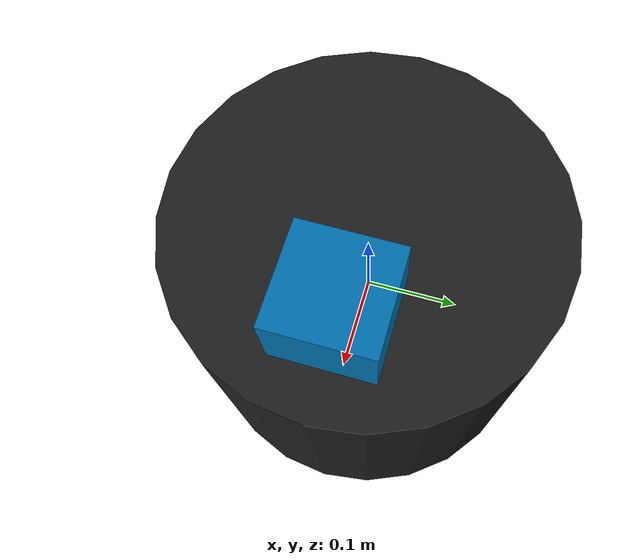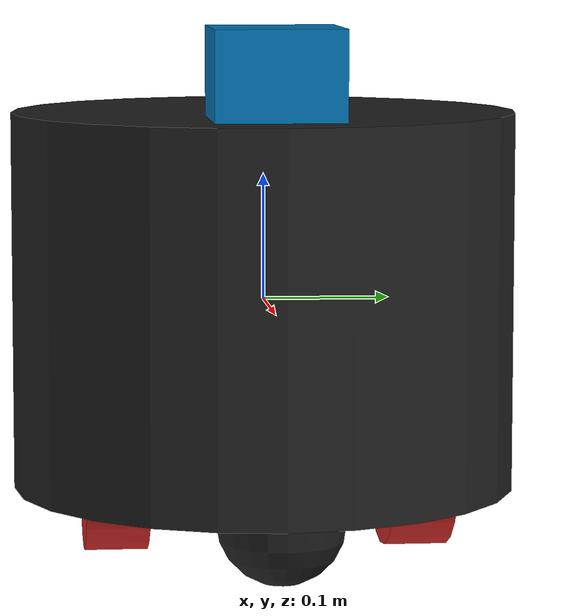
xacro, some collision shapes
<?xml version='1.0'?>
<robot name="my_robot" xmlns:xacro="http://www.ros.org/wiki/xacro">

  <xacro:include filename="$(find my_robot)/urdf/my_robot.gazebo" />
  <link name="robot_footprint"></link>

  <gazebo reference="left_wheel">
      <material>Gazebo/Red</material>
  </gazebo>

  <gazebo reference="right_wheel">
      <material>Gazebo/Red</material>
  </gazebo>

  <gazebo reference="chassis">
      <material>Gazebo/Black</material>
  </gazebo>

    <link name='chassis'>
      <pose>0 0 0.1 0 0 0</pose>

      <inertial>
        <mass value="15.0"/>
        <origin xyz="0.0 0 0" rpy=" 0 0 0"/>
        <inertia
            ixx="0.1" ixy="0" ixz="0"
            iyy="0.1" iyz="0"
            izz="0.1"
        />
      </inertial>

      <collision name='collision'>
        <origin xyz="0 0 0" rpy=" 0 0 0"/>
        <geometry>
  		<cylinder radius="0.2" length="0.3"/>
        </geometry>
      </collision>

      <visual name='chassis_visual'>
  	  <origin xyz="0 0 0" rpy=" 0 0 0"/>
        <geometry>
  		<cylinder radius="0.2" length="0.3"/>
        </geometry>
      </visual>

      <collision name='back_caster_collision'>
        <origin xyz="-0.15 0 -0.15" rpy=" 0 0 0"/>
        <geometry>
          <sphere radius="0.0499"/>
        </geometry>
      </collision>

      <visual name='back_caster_visual'>
        <origin xyz="-0.15 0 -0.15" rpy=" 0 0 0"/>
        <geometry>
          <sphere radius="0.05"/>
        </geometry>
      </visual>

      <collision name='front_caster_collision'>
        <origin xyz="0.15 0 -0.15" rpy=" 0 0 0"/>
        <geometry>
          <sphere radius="0.0499"/>
        </geometry>
      </collision>

      <visual name='front_caster_visual'>
        <origin xyz="0.15 0 -0.15" rpy=" 0 0 0"/>
        <geometry>
          <sphere radius="0.05"/>
        </geometry>
      </visual>

    </link>

  <link name='left_wheel'>
    <inertial>
      <mass value="5.0"/>
      <origin xyz="0.0 0 0" rpy=" 0 0 0"/>
      <inertia
        ixx="0.1" ixy="0" ixz="0"
        iyy="0.1" iyz="0"
        izz="0.1"
      />
    </inertial>

    <visual name='left_wheel_visual'>
      <origin xyz="0 0 0" rpy=" 0 1.5707 1.5707"/>
      <geometry>
        <cylinder radius="0.1" length="0.05"/>
      </geometry>
    </visual>

    <collision name='left_wheel_collision'>
      <origin xyz="0 0 0" rpy=" 0 1.5707 1.5707"/>
      <geometry>
        <cylinder radius="0.1" length="0.05"/>
      </geometry>
    </collision>
  </link>

  <link name='right_wheel'>
    <inertial>
      <mass value="5.0"/>
      <origin xyz="0.0 0 0" rpy=" 0 0 0"/>
      <inertia
          ixx="0.1" ixy="0" ixz="0"
          iyy="0.1" iyz="0"
          izz="0.1"
      />
    </inertial>

    <visual name='right_wheel_visual'>
      <origin xyz="0 0 0" rpy=" 0 1.5707 1.5707"/>
      <geometry>
        <cylinder radius="0.1" length="0.05"/>
      </geometry>
    </visual>

    <collision name='right_wheel_collision'>
      <origin xyz="0 0 0" rpy=" 0 1.5707 1.5707"/>
      <geometry>
        <cylinder radius="0.1" length="0.05"/>
      </geometry>
    </collision>
  </link>

  <link name='hokuyo'>
    <inertial>
      <mass value="1e-5"/>
      <origin xyz="0 0 0" rpy=" 0 0 0"/>
      <inertia
    ixx="1e-6" ixy="0" ixz="0"
    iyy="1e-6" iyz="0"
    izz="1e-6"
      />
    </inertial>

    <visual name='hokuyo_visual'>
      <origin xyz="0 0 0" rpy=" 0 0 0"/>
      <geometry>
        <mesh filename="package://my_robot/meshes/hokuyo.dae"/>
      </geometry>
    </visual>

    <collision name='hokuyo_collision'>
      <origin xyz="0 0 0" rpy=" 0 0 0"/>
      <geometry>
    <box size=".1 .1 .1"/>
      </geometry>
    </collision>
  </link>

  <link name='camera_link'>
  	<inertial>
  	  <mass value="0.1"/>
  	  <origin xyz="0.05 0.05 0.05" rpy=" 0 0 0"/>
  	  <inertia
  	  ixx="1e-6" ixy="0" ixz="0"
  	  iyy="1e-6" iyz="0"
  	  izz="1e-6"
  	  />
  	</inertial>

  	<visual>
  	  <origin xyz="0 0 0" rpy=" 0 0 0"/>
  	  <geometry>
  	<box size=".05 .05 .05"/>
  	  </geometry>
  	</visual>

  	<collision>
  	  <origin xyz="0 0 0" rpy=" 0 0 0"/>
  	  <geometry>
  	<box size=".05 .05 .05"/>
  	  </geometry>
  	</collision>
  </link>

  <!-- Joints -->

  <joint name="robot_footprint_joint" type="fixed">
    <origin xyz="0 0 0" rpy="0 0 0" />
    <parent link="robot_footprint"/>
    <child link="chassis" />
  </joint>

  <joint type="continuous" name="left_wheel_hinge">
    <origin xyz="0 0.12 -0.1" rpy="0 0 0"/>
    <child link="left_wheel"/>
    <parent link="chassis"/>
    <axis xyz="0 1 0" rpy="0 0 0"/>
    <limit effort="10000" velocity="1000"/>
    <dynamics damping="1.0" friction="1.0"/>
  </joint>

  <joint type="continuous" name="right_wheel_hinge">
    <origin xyz="0 -0.12 -0.1" rpy="0 0 0"/>
    <child link="right_wheel"/>
    <parent link="chassis"/>
    <axis xyz="0 1 0" rpy="0 0 0"/>
    <limit effort="10000" velocity="1000"/>
    <dynamics damping="1.0" friction="1.0"/>
  </joint>

  <joint type="fixed" name="hokuyo_joint">
    <origin xyz=".1 0 .17" rpy="0 0 0"/>
    <child link="hokuyo"/>
    <parent link="chassis"/>
    <axis xyz="0 1 0" rpy="0 0 0"/>
  </joint>

  <joint name="camera_optical_joint" type="fixed">
    <origin xyz="0 0 0" rpy="-1.5707 0 -1.5707"/>
    <parent link="camera_link"/>
    <child link="camera_link_optical"/>
  </joint>
  <joint name="camera_joint" type="fixed">
    <origin xyz="0 0 0" rpy="0 0 0"/>
    <parent link="chassis"/>
    <child link="camera_link"/>
  </joint>

  <link name="camera_link_optical">
  </link>
</robot>
